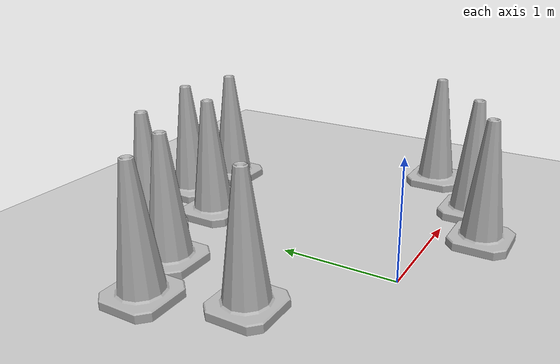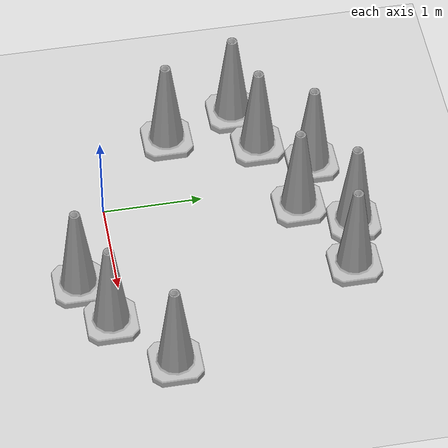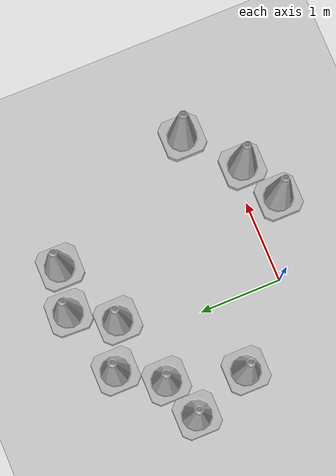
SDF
<sdf version="1.7">
 <world name="default">
  <light name="sun" type="directional">
   <pose>0 0 10 0 -0 0</pose>
   <diffuse>0.8 0.8 0.8 1</diffuse>
   <specular>0.2 0.2 0.2 1</specular>
   <attenuation>
    <range>1000</range>
    <constant>0.9</constant>
    <linear>0.01</linear>
    <quadratic>0.001</quadratic>
   </attenuation>
   <direction>-0.5 0.1 -0.9</direction>
   <spot><inner_angle>0</inner_angle><outer_angle>0</outer_angle><falloff>0</falloff></spot>
  </light>
  <model name="ground_plane">
   <static>1</static>
   <link name="link">
    <collision name="collision">
     <geometry><plane><normal>0 0 1</normal><size>100 100</size></plane></geometry>
     <surface>
      <contact><collide_bitmask>65535</collide_bitmask></contact>
      <friction><ode><mu>100</mu><mu2>50</mu2></ode></friction>
     </surface>
    </collision>
    <visual name="visual">
     <cast_shadows>0</cast_shadows>
     <geometry><plane><normal>0 0 1</normal><size>100 100</size></plane></geometry>
     <material>
      <script><uri>file://media/materials/scripts/gazebo.material</uri><name>Gazebo/Grey</name></script>
     </material>
    </visual>
   </link>
  </model>
  <gravity>0 0 -9.8</gravity>
  <magnetic_field>6e-06 2.3e-05 -4.2e-05</magnetic_field>
  <atmosphere type="adiabatic"/>
  <physics type="ode">
   <max_step_size>0.001</max_step_size>
   <real_time_factor>1</real_time_factor>
   <real_time_update_rate>1000</real_time_update_rate>
  </physics>
  <scene><ambient>0.4 0.4 0.4 1</ambient><background>0.7 0.7 0.7 1</background><shadows>1</shadows></scene>
  <audio><device>default</device></audio>
  <spherical_coordinates>
   <surface_model>EARTH_WGS84</surface_model>
   <latitude_deg>0</latitude_deg>
   <longitude_deg>0</longitude_deg>
   <elevation>0</elevation>
   <heading_deg>0</heading_deg>
  </spherical_coordinates>
  <model name="Construction Cone">
   <link name="link">
    <collision name="collision">
     <geometry>
      <mesh><scale>10 10 10</scale><uri>model://construction_cone/meshes/construction_cone.dae</uri></mesh>
     </geometry>
    </collision>
    <visual name="visual">
     <geometry>
      <mesh><scale>10 10 10</scale><uri>model://construction_cone/meshes/construction_cone.dae</uri></mesh>
     </geometry>
    </visual>
    <inertial>
     <inertia><ixx>1</ixx><ixy>0</ixy><ixz>0</ixz><iyy>1</iyy><iyz>0</iyz><izz>1</izz></inertia>
     <mass>1</mass>
    </inertial>
   </link>
   <pose>0.27925 1.94756 -0 0 -0 0.009464</pose>
  </model>
  <model name="Construction Cone_0">
   <link name="link">
    <collision name="collision">
     <geometry>
      <mesh><scale>10 10 10</scale><uri>model://construction_cone/meshes/construction_cone.dae</uri></mesh>
     </geometry>
    </collision>
    <visual name="visual">
     <geometry>
      <mesh><scale>10 10 10</scale><uri>model://construction_cone/meshes/construction_cone.dae</uri></mesh>
     </geometry>
    </visual>
    <inertial>
     <inertia><ixx>1</ixx><ixy>0</ixy><ixz>0</ixz><iyy>1</iyy><iyz>0</iyz><izz>1</izz></inertia>
     <mass>1</mass>
    </inertial>
   </link>
   <pose>1.12625 2.34181 -0 0 -1e-06 0</pose>
  </model>
  <model name="Construction Cone_1">
   <link name="link">
    <collision name="collision">
     <geometry>
      <mesh><scale>10 10 10</scale><uri>model://construction_cone/meshes/construction_cone.dae</uri></mesh>
     </geometry>
    </collision>
    <visual name="visual">
     <geometry>
      <mesh><scale>10 10 10</scale><uri>model://construction_cone/meshes/construction_cone.dae</uri></mesh>
     </geometry>
    </visual>
    <inertial>
     <inertia><ixx>1</ixx><ixy>0</ixy><ixz>0</ixz><iyy>1</iyy><iyz>0</iyz><izz>1</izz></inertia>
     <mass>1</mass>
    </inertial>
   </link>
   <pose>-0.594593 1.68993 -0 -0 -1e-06 0.001011</pose>
  </model>
  <model name="Construction Cone_2">
   <link name="link">
    <collision name="collision">
     <geometry>
      <mesh><scale>10 10 10</scale><uri>model://construction_cone/meshes/construction_cone.dae</uri></mesh>
     </geometry>
    </collision>
    <visual name="visual">
     <geometry>
      <mesh><scale>10 10 10</scale><uri>model://construction_cone/meshes/construction_cone.dae</uri></mesh>
     </geometry>
    </visual>
    <inertial>
     <inertia><ixx>1</ixx><ixy>0</ixy><ixz>0</ixz><iyy>1</iyy><iyz>0</iyz><izz>1</izz></inertia>
     <mass>1</mass>
    </inertial>
   </link>
   <pose>2.03393 0.402631 -0 -0 -0 -0</pose>
  </model>
  <model name="Construction Cone_3">
   <link name="link">
    <collision name="collision">
     <geometry>
      <mesh><scale>10 10 10</scale><uri>model://construction_cone/meshes/construction_cone.dae</uri></mesh>
     </geometry>
    </collision>
    <visual name="visual">
     <geometry>
      <mesh><scale>10 10 10</scale><uri>model://construction_cone/meshes/construction_cone.dae</uri></mesh>
     </geometry>
    </visual>
    <inertial>
     <inertia><ixx>1</ixx><ixy>0</ixy><ixz>0</ixz><iyy>1</iyy><iyz>0</iyz><izz>1</izz></inertia>
     <mass>1</mass>
    </inertial>
   </link>
   <pose>1.43232 -0.128199 -0 0 -1e-06 0</pose>
  </model>
  <model name="Construction Cone_4">
   <link name="link">
    <collision name="collision">
     <geometry>
      <mesh><scale>10 10 10</scale><uri>model://construction_cone/meshes/construction_cone.dae</uri></mesh>
     </geometry>
    </collision>
    <visual name="visual">
     <geometry>
      <mesh><scale>10 10 10</scale><uri>model://construction_cone/meshes/construction_cone.dae</uri></mesh>
     </geometry>
    </visual>
    <inertial>
     <inertia><ixx>1</ixx><ixy>0</ixy><ixz>0</ixz><iyy>1</iyy><iyz>0</iyz><izz>1</izz></inertia>
     <mass>1</mass>
    </inertial>
   </link>
   <pose>0.921509 -0.377118 -0 0 -1e-06 0.000103</pose>
  </model>
  <model name="Construction Cone_6">
   <link name="link">
    <collision name="collision">
     <geometry>
      <mesh><scale>10 10 10</scale><uri>model://construction_cone/meshes/construction_cone.dae</uri></mesh>
     </geometry>
    </collision>
    <visual name="visual">
     <geometry>
      <mesh><scale>10 10 10</scale><uri>model://construction_cone/meshes/construction_cone.dae</uri></mesh>
     </geometry>
    </visual>
    <inertial>
     <inertia><ixx>1</ixx><ixy>0</ixy><ixz>0</ixz><iyy>1</iyy><iyz>0</iyz><izz>1</izz></inertia>
     <mass>1</mass>
    </inertial>
   </link>
   <pose>-0.836001 0.784755 -0 0 -1e-06 0</pose>
  </model>
  <model name="Construction Cone_8">
   <link name="link">
    <collision name="collision">
     <geometry>
      <mesh><scale>10 10 10</scale><uri>model://construction_cone/meshes/construction_cone.dae</uri></mesh>
     </geometry>
    </collision>
    <visual name="visual">
     <geometry>
      <mesh><scale>10 10 10</scale><uri>model://construction_cone/meshes/construction_cone.dae</uri></mesh>
     </geometry>
    </visual>
    <inertial>
     <inertia><ixx>1</ixx><ixy>0</ixy><ixz>0</ixz><iyy>1</iyy><iyz>0</iyz><izz>1</izz></inertia>
     <mass>1</mass>
    </inertial>
   </link>
   <pose>-1.0976 1.51208 -0 -0 -1e-06 -0.000109</pose>
  </model>
  <model name="Construction Cone_9">
   <link name="link">
    <collision name="collision">
     <geometry>
      <mesh><scale>10 10 10</scale><uri>model://construction_cone/meshes/construction_cone.dae</uri></mesh>
     </geometry>
    </collision>
    <visual name="visual">
     <geometry>
      <mesh><scale>10 10 10</scale><uri>model://construction_cone/meshes/construction_cone.dae</uri></mesh>
     </geometry>
    </visual>
    <inertial>
     <inertia><ixx>1</ixx><ixy>0</ixy><ixz>0</ixz><iyy>1</iyy><iyz>0</iyz><izz>1</izz></inertia>
     <mass>1</mass>
    </inertial>
   </link>
   <pose>-0.262477 2.19335 -0 -0 -1e-06 0.001567</pose>
  </model>
  <model name="Construction Cone_10">
   <link name="link">
    <collision name="collision">
     <geometry>
      <mesh><scale>10 10 10</scale><uri>model://construction_cone/meshes/construction_cone.dae</uri></mesh>
     </geometry>
    </collision>
    <visual name="visual">
     <geometry>
      <mesh><scale>10 10 10</scale><uri>model://construction_cone/meshes/construction_cone.dae</uri></mesh>
     </geometry>
    </visual>
    <inertial>
     <inertia><ixx>1</ixx><ixy>0</ixy><ixz>0</ixz><iyy>1</iyy><iyz>0</iyz><izz>1</izz></inertia>
     <mass>1</mass>
    </inertial>
   </link>
   <pose>0.583494 2.45065 -0 0 -1e-06 -0.042363</pose>
  </model>
 </world>
</sdf>
